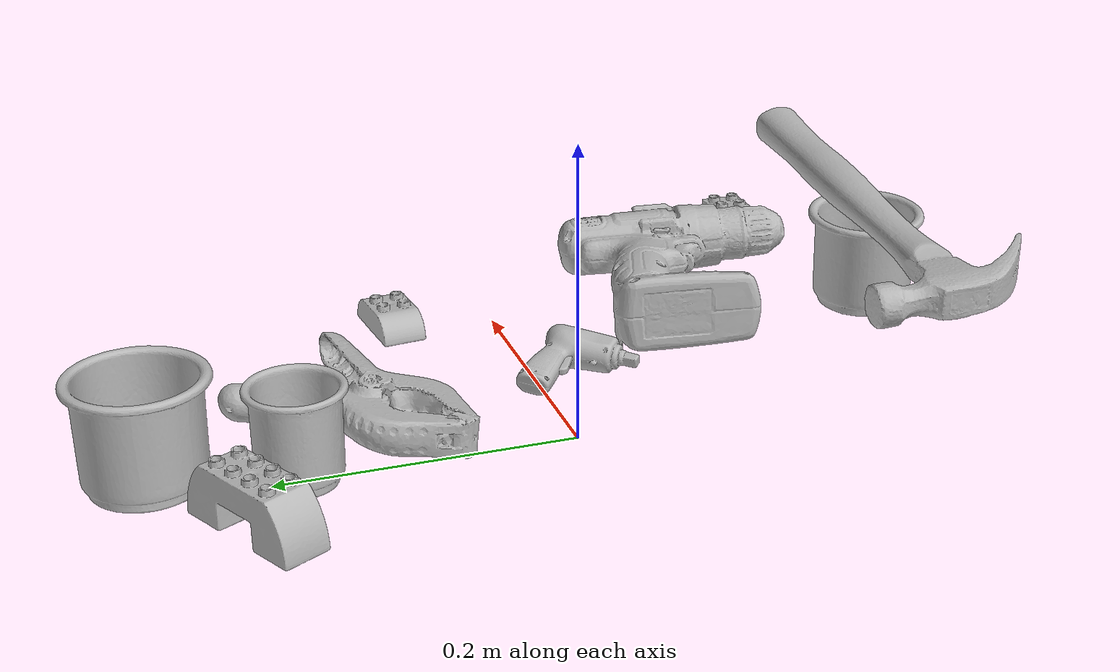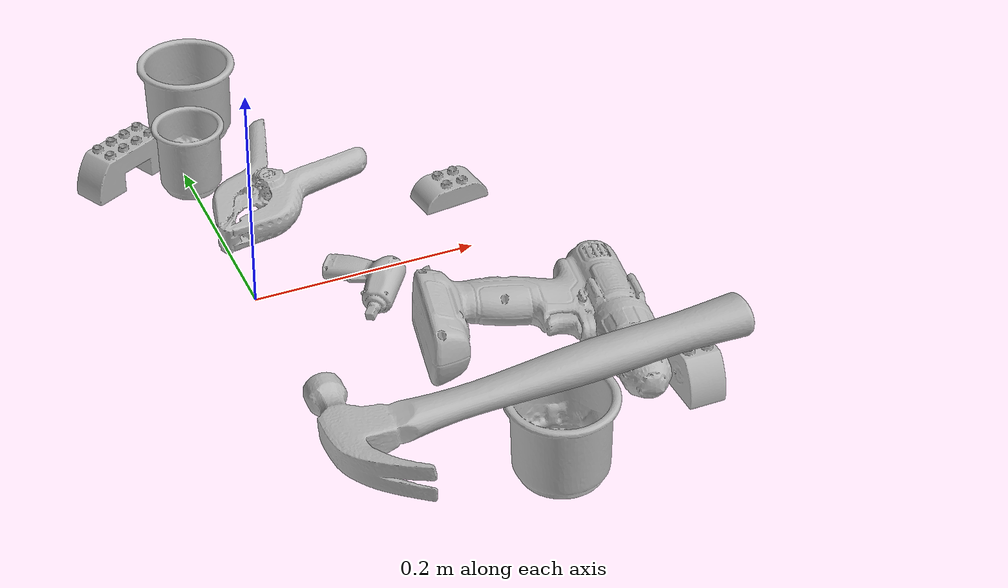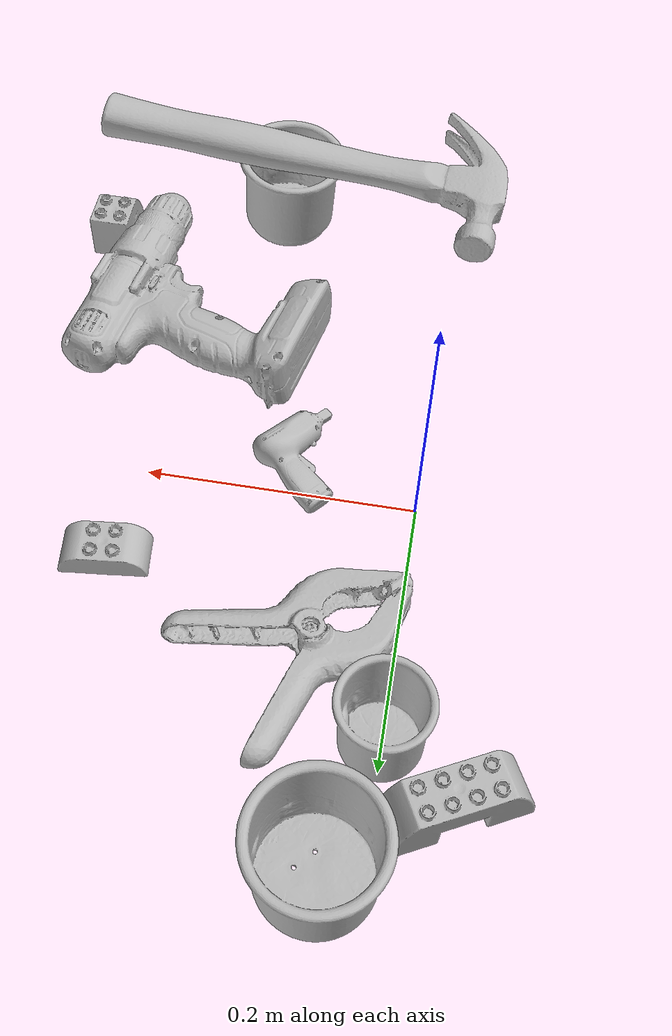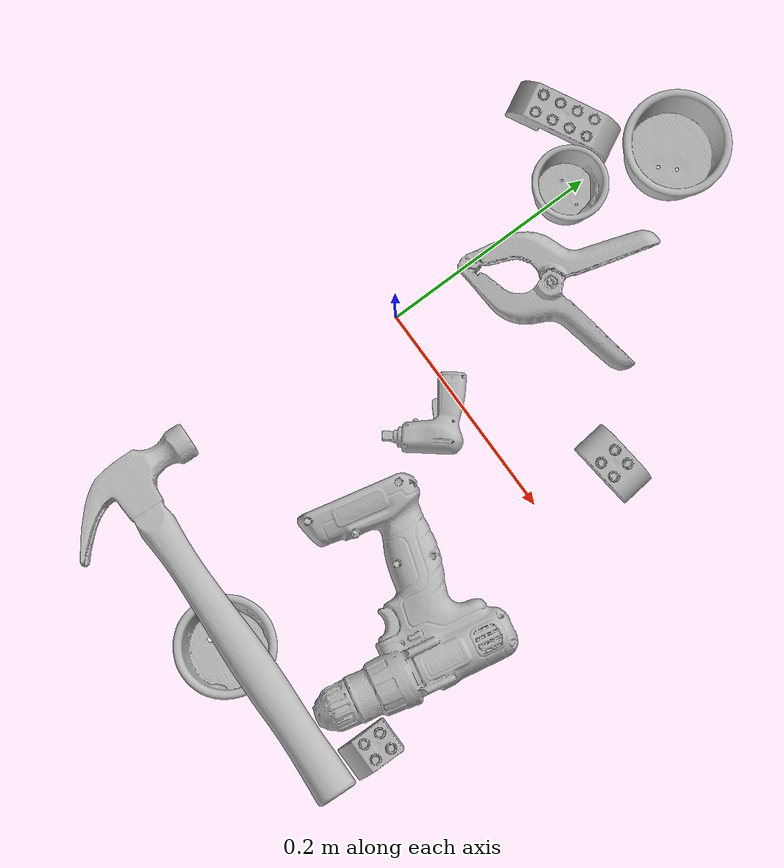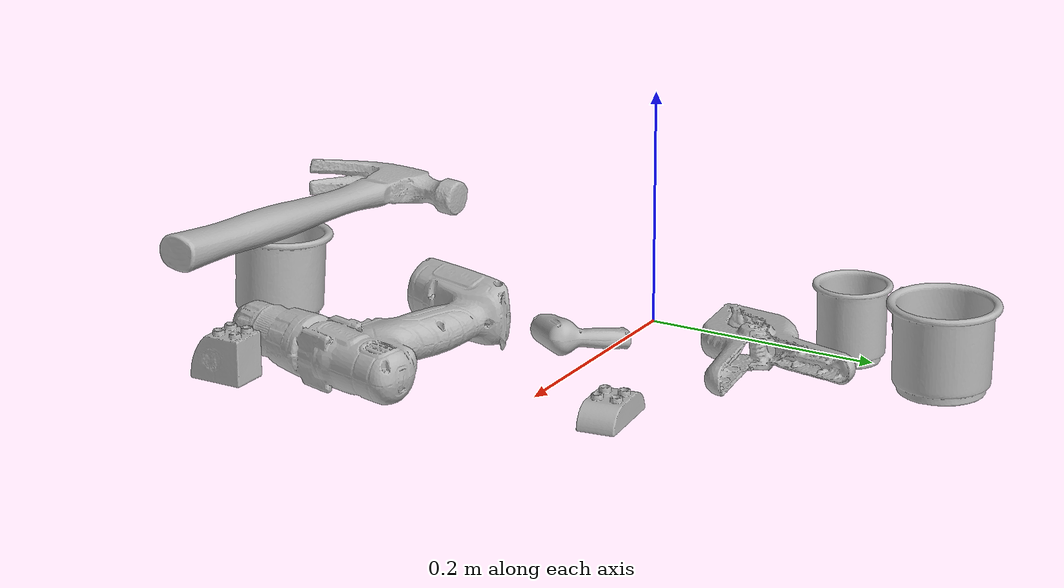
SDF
<sdf version="1.4">
  <world name="default">
    <light name="light1" type="point">
      <pose>0 0 1 0 0 0</pose>
      <diffuse>3 3 3 1</diffuse>
      <specular>3 3 3 1</specular>
    </light>
    <light name="light2" type="point">
      <pose>0 0.5 2 0 0 0</pose>
      <diffuse>1 1 1 1</diffuse>
      <specular>1 1 1 1</specular>
    </light>
    <light name="light3" type="point">
      <pose>0 0.5 2 0 0 0</pose>
      <diffuse>3 3 3 1</diffuse>
      <specular>3 3 3 1</specular>
    </light>
    <scene>
      <ambient>0.7 0.7 0.7</ambient>
    </scene>
    <model name="cup1">
      <link name="link_cup1">
        <collision name="default">
          <geometry>
            <mesh>
              <uri>model://g_cups/collision_meshes/collision.obj</uri>
              <scale>1.0 1.0 1.0</scale>
            </mesh>
          </geometry>
          <surface>
            <friction>
              <ode>
                <mu>0.5</mu>
                <mu2>0.5</mu2>
              </ode>
            </friction>
          <contact>
        <ode>
            <max_vel>0</max_vel>
            <min_depth>0.0001</min_depth>
            <kp>1e8</kp>
        </ode>
    </contact></surface>
        </collision>
        <visual name="default">
          <geometry>
            <mesh>
              <uri>model://g_cups/visual_meshes/visual.dae</uri>
              <scale>1.0 1.0 1.0</scale>
            </mesh>
          </geometry>
        </visual>
        <inertial>
          <mass>0.057625629007816315</mass>
          <pose>-0.0007946282275952399 -4.206500670989044e-05 -0.0021329375449568033 -0.21382697289054745 -0.3141031271963666 0.3112149002706268</pose>
          <inertia>
            <ixx>6.726202e-05</ixx>
            <iyy>6.7033216e-05</iyy>
            <izz>6.967186e-05</izz>
            <ixy>0</ixy>
            <ixz>0</ixz>
            <iyz>0</iyz>
          </inertia>
        </inertial>
      </link>
      <pose>0.1427450329065323 -0.28065407276153564 0.03896951675415039 0.05410010601925763 -0.01872803259118658 -1.7734731260308372</pose>
    </model>
    <model name="cup2">
      <link name="link_cup2">
        <collision name="default">
          <geometry>
            <mesh>
              <uri>model://c_cups/collision_meshes/collision.obj</uri>
              <scale>1.0 1.0 1.0</scale>
            </mesh>
          </geometry>
          <surface>
            <friction>
              <ode>
                <mu>0.5</mu>
                <mu2>0.5</mu2>
              </ode>
            </friction>
          <contact>
        <ode>
            <max_vel>0</max_vel>
            <min_depth>0.0001</min_depth>
            <kp>1e8</kp>
        </ode>
    </contact></surface>
        </collision>
        <visual name="default">
          <geometry>
            <mesh>
              <uri>model://c_cups/visual_meshes/visual.dae</uri>
              <scale>1.0 1.0 1.0</scale>
            </mesh>
          </geometry>
        </visual>
        <inertial>
          <mass>0.03477548435330391</mass>
          <pose>0.0007237261161208153 0.0020153902005404234 -0.0012750983005389571 0.30215732346046187 0.013461711857135551 -0.08771879968331305</pose>
          <inertia>
            <ixx>2.5862058e-05</ixx>
            <iyy>2.540504e-05</iyy>
            <izz>2.2871589e-05</izz>
            <ixy>0</ixy>
            <ixz>0</ixz>
            <iyz>0</iyz>
          </inertia>
        </inertial>
      </link>
      <pose>0.0010204082354903221 0.18136264383792877 0.03345879539847374 2.2904838480474176e-05 -8.017980381263504e-06 -0.6556881539075502</pose>
    </model>
    <model name="cup3">
      <link name="link_cup3">
        <collision name="default">
          <geometry>
            <mesh>
              <uri>model://h_cups/collision_meshes/collision.obj</uri>
              <scale>1.0 1.0 1.0</scale>
            </mesh>
          </geometry>
          <surface>
            <friction>
              <ode>
                <mu>0.5</mu>
                <mu2>0.5</mu2>
              </ode>
            </friction>
          <contact>
        <ode>
            <max_vel>0</max_vel>
            <min_depth>0.0001</min_depth>
            <kp>1e8</kp>
        </ode>
    </contact></surface>
        </collision>
        <visual name="default">
          <geometry>
            <mesh>
              <uri>model://h_cups/visual_meshes/visual.dae</uri>
              <scale>1.0 1.0 1.0</scale>
            </mesh>
          </geometry>
        </visual>
        <inertial>
          <mass>0.050017159432172775</mass>
          <pose>-2.702731035242323e-05 0.0002301866770721972 -0.0018405388109385967 -0.024362003715272553 0.06545245272055236 0.12885201823743497</pose>
          <inertia>
            <ixx>6.459484e-05</ixx>
            <iyy>6.382401e-05</iyy>
            <izz>6.774227e-05</izz>
            <ixy>0</ixy>
            <ixz>0</ixz>
            <iyz>0</iyz>
          </inertia>
        </inertial>
      </link>
      <pose>0.027998153120279312 0.27217474579811096 0.03775801137089729 7.104344812436451e-08 1.3438827837312233e-07 2.2914596570661545</pose>
    </model>
    <model name="toy1">
      <link name="link_toy1">
        <collision name="default">
          <geometry>
            <mesh>
              <uri>model://e_lego_duplo/collision_meshes/collision.obj</uri>
              <scale>1.0 1.0 1.0</scale>
            </mesh>
          </geometry>
          <surface>
            <friction>
              <ode>
                <mu>0.5</mu>
                <mu2>0.5</mu2>
              </ode>
            </friction>
          <contact>
        <ode>
            <max_vel>0</max_vel>
            <min_depth>0.0001</min_depth>
            <kp>1e8</kp>
        </ode>
    </contact></surface>
        </collision>
        <visual name="default">
          <geometry>
            <mesh>
              <uri>model://e_lego_duplo/visual_meshes/visual.dae</uri>
              <scale>1.0 1.0 1.0</scale>
            </mesh>
          </geometry>
        </visual>
        <inertial>
          <mass>0.09100330621004105</mass>
          <pose>0.0003256048948969692 0.00023485418932978064 0.0019521461799740791 -0.02256778535698338 -6.825395529084007e-05 -0.0076251622764869605</pose>
          <inertia>
            <ixx>1.897719e-05</ixx>
            <iyy>7.788726e-05</iyy>
            <izz>7.584653e-05</izz>
            <ixy>0</ixy>
            <ixz>0</ixz>
            <iyz>0</iyz>
          </inertia>
        </inertial>
      </link>
      <pose>-0.04979012906551361 0.216284841299057 0.021808966994285583 2.6999455781705413e-06 2.419954173382078e-07 0.4876043615407044</pose>
    </model>
    <model name="toy2">
      <link name="link_toy2">
        <collision name="default">
          <geometry>
            <mesh>
              <uri>model://b_toy_airplane/collision_meshes/collision.obj</uri>
              <scale>0.5 0.5 0.5</scale>
            </mesh>
          </geometry>
          <surface>
            <friction>
              <ode>
                <mu>0.5</mu>
                <mu2>0.5</mu2>
              </ode>
            </friction>
          <contact>
        <ode>
            <max_vel>0</max_vel>
            <min_depth>0.0001</min_depth>
            <kp>1e8</kp>
        </ode>
    </contact></surface>
        </collision>
        <visual name="default">
          <geometry>
            <mesh>
              <uri>model://b_toy_airplane/visual_meshes/visual.dae</uri>
              <scale>0.5 0.5 0.5</scale>
            </mesh>
          </geometry>
        </visual>
        <inertial>
          <mass>0.06363805383443832</mass>
          <pose>0.002540681976824999 0.0020077931694686413 0.004771532956510782 -0.0400181041712346 -0.04022185546555606 -0.5601502891427816</pose>
          <inertia>
            <ixx>2.9536302e-05</ixx>
            <iyy>1.1805946e-05</iyy>
            <izz>3.6746103e-05</izz>
            <ixy>0</ixy>
            <ixz>0</ixz>
            <iyz>0</iyz>
          </inertia>
        </inertial>
      </link>
      <pose>0.09590408951044083 -0.02444293163716793 0.008488934487104416 0.18487658561639156 0.1134991302430584 -2.2530720778445428</pose>
    </model>
    <model name="toy3">
      <link name="link_toy3">
        <collision name="default">
          <geometry>
            <mesh>
              <uri>model://d_lego_duplo/collision_meshes/collision.obj</uri>
              <scale>1.0 1.0 1.0</scale>
            </mesh>
          </geometry>
          <surface>
            <friction>
              <ode>
                <mu>0.5</mu>
                <mu2>0.5</mu2>
              </ode>
            </friction>
          <contact>
        <ode>
            <max_vel>0</max_vel>
            <min_depth>0.0001</min_depth>
            <kp>1e8</kp>
        </ode>
    </contact></surface>
        </collision>
        <visual name="default">
          <geometry>
            <mesh>
              <uri>model://d_lego_duplo/visual_meshes/visual.dae</uri>
              <scale>1.0 1.0 1.0</scale>
            </mesh>
          </geometry>
        </visual>
        <inertial>
          <mass>0.05334000289440155</mass>
          <pose>0.002830563811585307 0.0001636617089388892 0.0008589810458943248 0.0801090676593232 -0.3835525121717052 0.0010296416750687279</pose>
          <inertia>
            <ixx>1.0325837e-05</ixx>
            <iyy>1.4655165e-05</iyy>
            <izz>1.4132847e-05</izz>
            <ixy>0</ixy>
            <ixz>0</ixz>
            <iyz>0</iyz>
          </inertia>
        </inertial>
      </link>
      <pose>0.28408414125442505 -0.23649704456329346 0.021740121766924858 3.416487407281708e-06 -2.4036931651039473e-05 1.5651844663535186</pose>
    </model>
    <model name="toy4">
      <link name="link_toy4">
        <collision name="default">
          <geometry>
            <mesh>
              <uri>model://a_lego_duplo/collision_meshes/collision.obj</uri>
              <scale>1.0 1.0 1.0</scale>
            </mesh>
          </geometry>
          <surface>
            <friction>
              <ode>
                <mu>0.5</mu>
                <mu2>0.5</mu2>
              </ode>
            </friction>
          <contact>
        <ode>
            <max_vel>0</max_vel>
            <min_depth>0.0001</min_depth>
            <kp>1e8</kp>
        </ode>
    </contact></surface>
        </collision>
        <visual name="default">
          <geometry>
            <mesh>
              <uri>model://a_lego_duplo/visual_meshes/visual.dae</uri>
              <scale>1.0 1.0 1.0</scale>
            </mesh>
          </geometry>
        </visual>
        <inertial>
          <mass>0.02371947281062603</mass>
          <pose>-0.00011337659088894725 0.00018517536227591336 0.00036926098982803524 -0.014117032318495473 -0.00012566219654468525 6.139472672246545e-05</pose>
          <inertia>
            <ixx>3.0410272e-06</ixx>
            <iyy>6.8125664e-06</iyy>
            <izz>8.438875e-06</izz>
            <ixy>0</ixy>
            <ixz>0</ixz>
            <iyz>0</iyz>
          </inertia>
        </inertial>
      </link>
      <pose>0.21207360923290253 0.07508106529712677 0.012111999094486237 -4.4208831372752126e-08 -3.891012650648445e-08 -3.0238498434623975</pose>
    </model>
    <model name="hardware1">
      <link name="link_hardware1">
        <collision name="default">
          <geometry>
            <mesh>
              <uri>model://hammer/collision_meshes/collision.obj</uri>
              <scale>1.0 1.0 1.0</scale>
            </mesh>
          </geometry>
          <surface>
            <friction>
              <ode>
                <mu>0.5</mu>
                <mu2>0.5</mu2>
              </ode>
            </friction>
          <contact>
        <ode>
            <max_vel>0</max_vel>
            <min_depth>0.0001</min_depth>
            <kp>1e8</kp>
        </ode>
    </contact></surface>
        </collision>
        <visual name="default">
          <geometry>
            <mesh>
              <uri>model://hammer/visual_meshes/visual.dae</uri>
              <scale>1.0 1.0 1.0</scale>
            </mesh>
          </geometry>
        </visual>
        <inertial>
          <mass>0.21542595326900482</mass>
          <pose>0.009415775537490845 -0.011892358772456646 -0.00012350629549473524 0.02315578421630864 -0.004792165572519315 -0.012760317567756519</pose>
          <inertia>
            <ixx>9.2278024e-05</ixx>
            <iyy>0.0025004656</iyy>
            <izz>0.002572105</izz>
            <ixy>0</ixy>
            <ixz>0</ixz>
            <iyz>0</iyz>
          </inertia>
        </inertial>
      </link>
      <pose>0.11690136790275574 -0.2786683738231659 0.08646311610937119 0.027044700584870938 0.09028430733364982 3.1033429633512006</pose>
    </model>
    <model name="hardware2">
      <link name="link_hardware2">
        <collision name="default">
          <geometry>
            <mesh>
              <uri>model://large_clamp/collision_meshes/collision.obj</uri>
              <scale>1.0 1.0 1.0</scale>
            </mesh>
          </geometry>
          <surface>
            <friction>
              <ode>
                <mu>0.5</mu>
                <mu2>0.5</mu2>
              </ode>
            </friction>
          <contact>
        <ode>
            <max_vel>0</max_vel>
            <min_depth>0.0001</min_depth>
            <kp>1e8</kp>
        </ode>
    </contact></surface>
        </collision>
        <visual name="default">
          <geometry>
            <mesh>
              <uri>model://large_clamp/visual_meshes/visual.dae</uri>
              <scale>1.0 1.0 1.0</scale>
            </mesh>
          </geometry>
        </visual>
        <inertial>
          <mass>0.16898278892040253</mass>
          <pose>0.006369357462972403 0.00035856629256159067 -0.00018398034444544464 -0.002133075920149734 0.009671594117503977 0.026633212091596442</pose>
          <inertia>
            <ixx>0.00014908903</ixx>
            <iyy>0.00028312797</iyy>
            <izz>0.00040958088</izz>
            <ixy>0</ixy>
            <ixz>0</ixz>
            <iyz>0</iyz>
          </inertia>
        </inertial>
      </link>
      <pose>0.0573856458067894 0.12417025119066238 0.01850387081503868 -0.011933731157196698 0.04691268538652761 -2.4399814058164266</pose>
    </model>
    <model name="hardware3">
      <link name="link_hardware3">
        <collision name="default">
          <geometry>
            <mesh>
              <uri>model://power_drill/collision_meshes/collision.obj</uri>
              <scale>1.0 1.0 1.0</scale>
            </mesh>
          </geometry>
          <surface>
            <friction>
              <ode>
                <mu>0.5</mu>
                <mu2>0.5</mu2>
              </ode>
            </friction>
          <contact>
        <ode>
            <max_vel>0</max_vel>
            <min_depth>0.0001</min_depth>
            <kp>1e8</kp>
        </ode>
    </contact></surface>
        </collision>
        <visual name="default">
          <geometry>
            <mesh>
              <uri>model://power_drill/visual_meshes/visual.dae</uri>
              <scale>1.0 1.0 1.0</scale>
            </mesh>
          </geometry>
        </visual>
        <inertial>
          <mass>0.7224003672599792</mass>
          <pose>-0.014780545607209206 0.014369428157806396 0.0012414171360433102 0.0046091635101465946 0.00407302394444766 -0.18362692290061644</pose>
          <inertia>
            <ixx>0.002943816</ixx>
            <iyy>0.0011582379</iyy>
            <izz>0.0038878287</izz>
            <ixy>0</ixy>
            <ixz>0</ixz>
            <iyz>0</iyz>
          </inertia>
        </inertial>
      </link>
      <pose>0.18718929588794708 -0.15367311239242554 0.027312442660331726 -0.030305830876263994 -0.047253062699062064 -1.7747217836312363</pose>
    </model>
  <physics type="ode">
      <max_contacts>50</max_contacts>
      <ode>
        <solver>
          <type>quick</type>
          <iters>75</iters>
        </solver>
        <constraints>
          <contact_max_correcting_vel>0</contact_max_correcting_vel>
          <contact_surface_layer>0</contact_surface_layer>
        </constraints>
      </ode>
    </physics></world>
</sdf>
